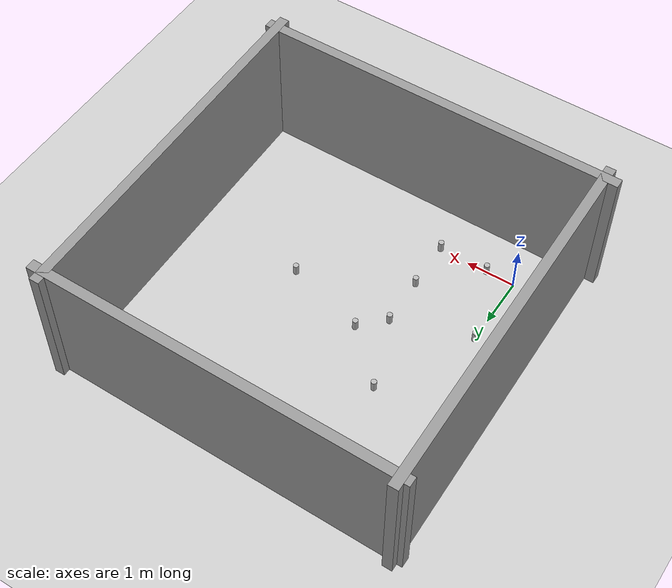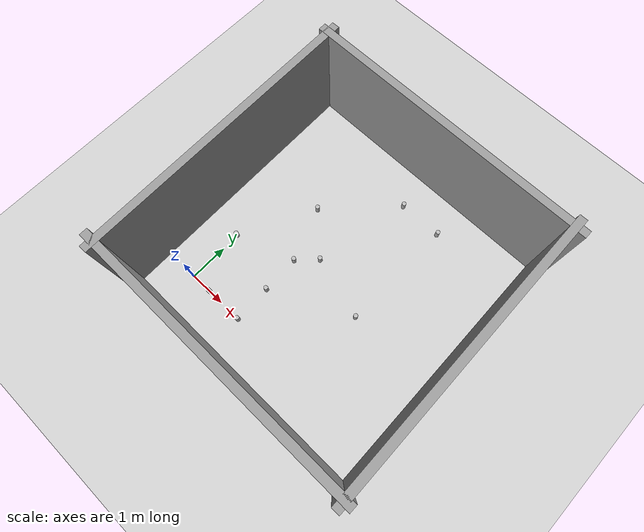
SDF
<sdf version="1.6">
 <world name="default">
  <light name="sun" type="directional">
   <pose>0 0 10 0 -0 0</pose>
   <diffuse>0.8 0.8 0.8 1</diffuse>
   <specular>0.1 0.1 0.1 1</specular>
   <attenuation>
    <range>1000</range>
    <constant>0.9</constant>
    <linear>0.01</linear>
    <quadratic>0.001</quadratic>
   </attenuation>
   <direction>-0.5 0.5 -1</direction>
  </light>
  <model name="ground_plane">
   <static>1</static>
   <link name="link">
    <collision name="collision">
     <geometry><plane><normal>0 0 1</normal><size>100 100</size></plane></geometry>
     <surface><friction><ode><mu>100</mu><mu2>50</mu2></ode></friction></surface>
    </collision>
    <visual name="visual">
     <cast_shadows>0</cast_shadows>
     <geometry><plane><normal>0 0 1</normal><size>100 100</size></plane></geometry>
     <material>
      <script><uri>file://media/materials/scripts/gazebo.material</uri><name>Gazebo/Grey</name></script>
     </material>
    </visual>
   </link>
  </model>
  <gravity>0 0 -9.8</gravity>
  <magnetic_field>6e-06 2.3e-05 -4.2e-05</magnetic_field>
  <atmosphere type="adiabatic"/>
  <physics name="default_physics" default="0" type="ode">
   <max_step_size>0.001</max_step_size>
   <real_time_factor>1</real_time_factor>
   <real_time_update_rate>1000</real_time_update_rate>
  </physics>
  <scene><ambient>0.4 0.4 0.4 1</ambient><background>0.7 0.7 0.7 1</background><shadows>1</shadows></scene>
  <spherical_coordinates>
   <surface_model>EARTH_WGS84</surface_model>
   <latitude_deg>0</latitude_deg>
   <longitude_deg>0</longitude_deg>
   <elevation>0</elevation>
   <heading_deg>0</heading_deg>
  </spherical_coordinates>
  <model name="wall1">
   <static>1</static>
   <link name="link">
    <pose>0 0 1.4 0 -0 0</pose>
    <collision name="collision"><geometry><box><size>7.5 0.2 2.8</size></box></geometry></collision>
    <visual name="visual">
     <cast_shadows>0</cast_shadows>
     <geometry><box><size>7.5 0.2 2.8</size></box></geometry>
     <material>
      <script>
       <uri>model://grey_wall/materials/scripts</uri>
       <uri>model://grey_wall/materials/textures</uri>
       <name>vrc/grey_wall</name>
      </script>
     </material>
    </visual>
   </link>
   <pose>-1 2.5 0 0 -0 -1.55905</pose>
  </model>
  <model name="wall2">
   <static>1</static>
   <link name="link">
    <pose>0 0 1.4 0 -0 0</pose>
    <collision name="collision"><geometry><box><size>7.5 0.2 2.8</size></box></geometry></collision>
    <visual name="visual">
     <cast_shadows>0</cast_shadows>
     <geometry><box><size>7.5 0.2 2.8</size></box></geometry>
     <material>
      <script>
       <uri>model://grey_wall/materials/scripts</uri>
       <uri>model://grey_wall/materials/textures</uri>
       <name>vrc/grey_wall</name>
      </script>
     </material>
    </visual>
   </link>
   <pose>2.5 6.0 0 0 -0 0</pose>
  </model>
  <model name="wall3">
   <static>1</static>
   <link name="link">
    <pose>0 0 1.4 0 -0 0</pose>
    <collision name="collision"><geometry><box><size>7.5 0.2 2.8</size></box></geometry></collision>
    <visual name="visual">
     <cast_shadows>0</cast_shadows>
     <geometry><box><size>7.5 0.2 2.8</size></box></geometry>
     <material>
      <script>
       <uri>model://grey_wall/materials/scripts</uri>
       <uri>model://grey_wall/materials/textures</uri>
       <name>vrc/grey_wall</name>
      </script>
     </material>
    </visual>
   </link>
   <pose>6.0 2.5 0 0 -0 -1.55905</pose>
  </model>
  <model name="wall4">
   <static>1</static>
   <link name="link">
    <pose>0 0 1.4 0 -0 0</pose>
    <collision name="collision"><geometry><box><size>7.5 0.2 2.8</size></box></geometry></collision>
    <visual name="visual">
     <cast_shadows>0</cast_shadows>
     <geometry><box><size>7.5 0.2 2.8</size></box></geometry>
     <material>
      <script>
       <uri>model://grey_wall/materials/scripts</uri>
       <uri>model://grey_wall/materials/textures</uri>
       <name>vrc/grey_wall</name>
      </script>
     </material>
    </visual>
   </link>
   <pose>2.5 -1 0 0 -0 0</pose>
  </model>
  <model name="can3.692430731715.0">
   <link name="link">
    <pose>0 0 0.115 0 -0 0</pose>
    <inertial>
     <mass>0.39</mass>
     <inertia><ixx>0.00058</ixx><ixy>0</ixy><ixz>0</ixz><iyy>0.00058</iyy><iyz>0</iyz><izz>0.00019</izz></inertia>
    </inertial>
    <collision name="collision">
     <geometry><cylinder><radius>0.055</radius><length>0.23</length></cylinder></geometry>
    </collision>
    <visual name="visual">
     <geometry><cylinder><radius>0.055</radius><length>0.23</length></cylinder></geometry>
     <material>
      <script>
       <uri>model://beer/materials/scripts</uri>
       <uri>model://beer/materials/textures</uri>
       <name>Beer/Diffuse</name>
      </script>
     </material>
    </visual>
   </link>
   <pose>3.69243073171 5.0 -2e-06 1e-06 0 -9.5e-05</pose>
  </model>
  <model name="can1.570153242481.0">
   <link name="link">
    <pose>0 0 0.115 0 -0 0</pose>
    <inertial>
     <mass>0.39</mass>
     <inertia><ixx>0.00058</ixx><ixy>0</ixy><ixz>0</ixz><iyy>0.00058</iyy><iyz>0</iyz><izz>0.00019</izz></inertia>
    </inertial>
    <collision name="collision">
     <geometry><cylinder><radius>0.055</radius><length>0.23</length></cylinder></geometry>
    </collision>
    <visual name="visual">
     <geometry><cylinder><radius>0.055</radius><length>0.23</length></cylinder></geometry>
     <material>
      <script>
       <uri>model://beer/materials/scripts</uri>
       <uri>model://beer/materials/textures</uri>
       <name>Beer/Diffuse</name>
      </script>
     </material>
    </visual>
   </link>
   <pose>1.57015324248 1.0 -2e-06 1e-06 0 -9.5e-05</pose>
  </model>
  <model name="can0.5856561554350.0">
   <link name="link">
    <pose>0 0 0.115 0 -0 0</pose>
    <inertial>
     <mass>0.39</mass>
     <inertia><ixx>0.00058</ixx><ixy>0</ixy><ixz>0</ixz><iyy>0.00058</iyy><iyz>0</iyz><izz>0.00019</izz></inertia>
    </inertial>
    <collision name="collision">
     <geometry><cylinder><radius>0.055</radius><length>0.23</length></cylinder></geometry>
    </collision>
    <visual name="visual">
     <geometry><cylinder><radius>0.055</radius><length>0.23</length></cylinder></geometry>
     <material>
      <script>
       <uri>model://beer/materials/scripts</uri>
       <uri>model://beer/materials/textures</uri>
       <name>Beer/Diffuse</name>
      </script>
     </material>
    </visual>
   </link>
   <pose>0.585656155435 0.0 -2e-06 1e-06 0 -9.5e-05</pose>
  </model>
  <model name="can1.03.40761563145">
   <link name="link">
    <pose>0 0 0.115 0 -0 0</pose>
    <inertial>
     <mass>0.39</mass>
     <inertia><ixx>0.00058</ixx><ixy>0</ixy><ixz>0</ixz><iyy>0.00058</iyy><iyz>0</iyz><izz>0.00019</izz></inertia>
    </inertial>
    <collision name="collision">
     <geometry><cylinder><radius>0.055</radius><length>0.23</length></cylinder></geometry>
    </collision>
    <visual name="visual">
     <geometry><cylinder><radius>0.055</radius><length>0.23</length></cylinder></geometry>
     <material>
      <script>
       <uri>model://beer/materials/scripts</uri>
       <uri>model://beer/materials/textures</uri>
       <name>Beer/Diffuse</name>
      </script>
     </material>
    </visual>
   </link>
   <pose>1.0 3.40761563145 -2e-06 1e-06 0 -9.5e-05</pose>
  </model>
  <model name="can1.534972847752.0">
   <link name="link">
    <pose>0 0 0.115 0 -0 0</pose>
    <inertial>
     <mass>0.39</mass>
     <inertia><ixx>0.00058</ixx><ixy>0</ixy><ixz>0</ixz><iyy>0.00058</iyy><iyz>0</iyz><izz>0.00019</izz></inertia>
    </inertial>
    <collision name="collision">
     <geometry><cylinder><radius>0.055</radius><length>0.23</length></cylinder></geometry>
    </collision>
    <visual name="visual">
     <geometry><cylinder><radius>0.055</radius><length>0.23</length></cylinder></geometry>
     <material>
      <script>
       <uri>model://beer/materials/scripts</uri>
       <uri>model://beer/materials/textures</uri>
       <name>Beer/Diffuse</name>
      </script>
     </material>
    </visual>
   </link>
   <pose>1.53497284775 2.0 -2e-06 1e-06 0 -9.5e-05</pose>
  </model>
  <model name="can1.598260276040.0">
   <link name="link">
    <pose>0 0 0.115 0 -0 0</pose>
    <inertial>
     <mass>0.39</mass>
     <inertia><ixx>0.00058</ixx><ixy>0</ixy><ixz>0</ixz><iyy>0.00058</iyy><iyz>0</iyz><izz>0.00019</izz></inertia>
    </inertial>
    <collision name="collision">
     <geometry><cylinder><radius>0.055</radius><length>0.23</length></cylinder></geometry>
    </collision>
    <visual name="visual">
     <geometry><cylinder><radius>0.055</radius><length>0.23</length></cylinder></geometry>
     <material>
      <script>
       <uri>model://beer/materials/scripts</uri>
       <uri>model://beer/materials/textures</uri>
       <name>Beer/Diffuse</name>
      </script>
     </material>
    </visual>
   </link>
   <pose>1.59826027604 0.0 -2e-06 1e-06 0 -9.5e-05</pose>
  </model>
  <model name="can2.02.46453804742">
   <link name="link">
    <pose>0 0 0.115 0 -0 0</pose>
    <inertial>
     <mass>0.39</mass>
     <inertia><ixx>0.00058</ixx><ixy>0</ixy><ixz>0</ixz><iyy>0.00058</iyy><iyz>0</iyz><izz>0.00019</izz></inertia>
    </inertial>
    <collision name="collision">
     <geometry><cylinder><radius>0.055</radius><length>0.23</length></cylinder></geometry>
    </collision>
    <visual name="visual">
     <geometry><cylinder><radius>0.055</radius><length>0.23</length></cylinder></geometry>
     <material>
      <script>
       <uri>model://beer/materials/scripts</uri>
       <uri>model://beer/materials/textures</uri>
       <name>Beer/Diffuse</name>
      </script>
     </material>
    </visual>
   </link>
   <pose>2.0 2.46453804742 -2e-06 1e-06 0 -9.5e-05</pose>
  </model>
  <model name="can3.639630057072.0">
   <link name="link">
    <pose>0 0 0.115 0 -0 0</pose>
    <inertial>
     <mass>0.39</mass>
     <inertia><ixx>0.00058</ixx><ixy>0</ixy><ixz>0</ixz><iyy>0.00058</iyy><iyz>0</iyz><izz>0.00019</izz></inertia>
    </inertial>
    <collision name="collision">
     <geometry><cylinder><radius>0.055</radius><length>0.23</length></cylinder></geometry>
    </collision>
    <visual name="visual">
     <geometry><cylinder><radius>0.055</radius><length>0.23</length></cylinder></geometry>
     <material>
      <script>
       <uri>model://beer/materials/scripts</uri>
       <uri>model://beer/materials/textures</uri>
       <name>Beer/Diffuse</name>
      </script>
     </material>
    </visual>
   </link>
   <pose>3.63963005707 2.0 -2e-06 1e-06 0 -9.5e-05</pose>
  </model>
  <model name="can2.554063367265.0">
   <link name="link">
    <pose>0 0 0.115 0 -0 0</pose>
    <inertial>
     <mass>0.39</mass>
     <inertia><ixx>0.00058</ixx><ixy>0</ixy><ixz>0</ixz><iyy>0.00058</iyy><iyz>0</iyz><izz>0.00019</izz></inertia>
    </inertial>
    <collision name="collision">
     <geometry><cylinder><radius>0.055</radius><length>0.23</length></cylinder></geometry>
    </collision>
    <visual name="visual">
     <geometry><cylinder><radius>0.055</radius><length>0.23</length></cylinder></geometry>
     <material>
      <script>
       <uri>model://beer/materials/scripts</uri>
       <uri>model://beer/materials/textures</uri>
       <name>Beer/Diffuse</name>
      </script>
     </material>
    </visual>
   </link>
   <pose>2.55406336726 5.0 -2e-06 1e-06 0 -9.5e-05</pose>
  </model>
  <model name="can0.01.48447976743">
   <link name="link">
    <pose>0 0 0.115 0 -0 0</pose>
    <inertial>
     <mass>0.39</mass>
     <inertia><ixx>0.00058</ixx><ixy>0</ixy><ixz>0</ixz><iyy>0.00058</iyy><iyz>0</iyz><izz>0.00019</izz></inertia>
    </inertial>
    <collision name="collision">
     <geometry><cylinder><radius>0.055</radius><length>0.23</length></cylinder></geometry>
    </collision>
    <visual name="visual">
     <geometry><cylinder><radius>0.055</radius><length>0.23</length></cylinder></geometry>
     <material>
      <script>
       <uri>model://beer/materials/scripts</uri>
       <uri>model://beer/materials/textures</uri>
       <name>Beer/Diffuse</name>
      </script>
     </material>
    </visual>
   </link>
   <pose>0.0 1.48447976743 -2e-06 1e-06 0 -9.5e-05</pose>
  </model>
 </world>
</sdf>
